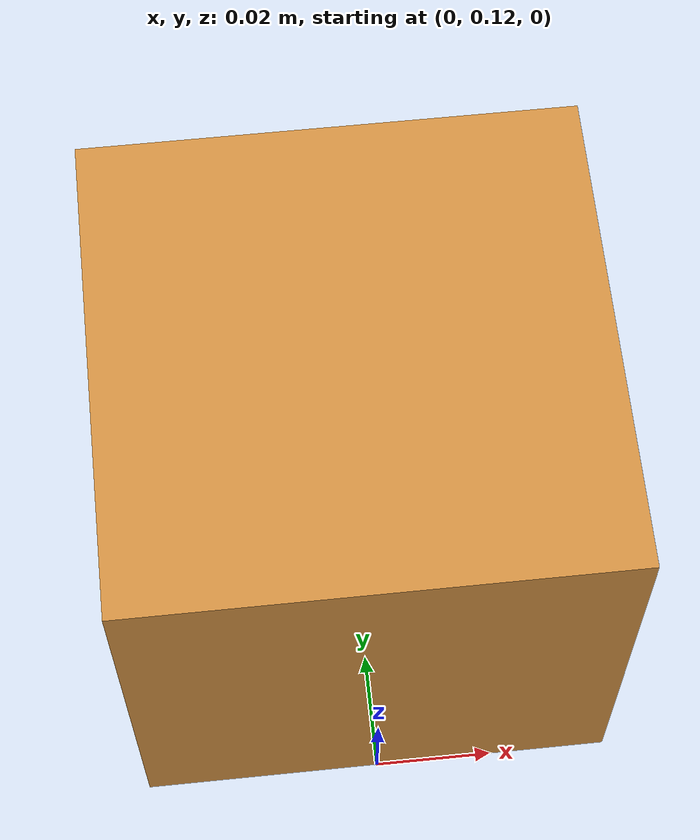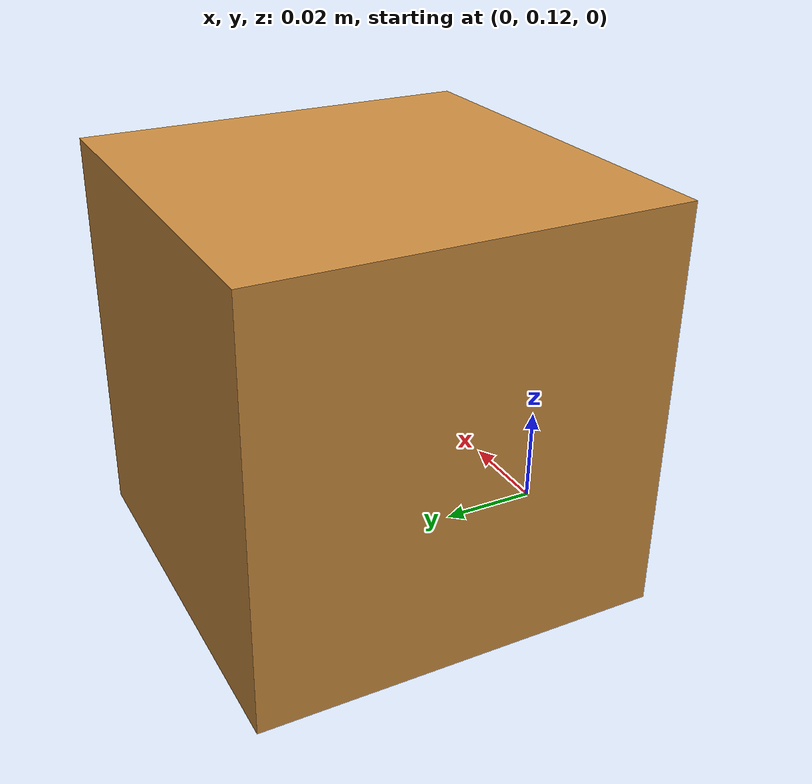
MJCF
<mujoco model="prop_box">
  <worldbody>
    <body name="box">
      <geom name="box_geom" type="box" pos="0 0.160 0.040" size="0.040 0.040 0.040"
            mass="0" contype="1" conaffinity="2" rgba="0.80 0.55 0.25 1"/>
    </body>
  </worldbody>
</mujoco>
